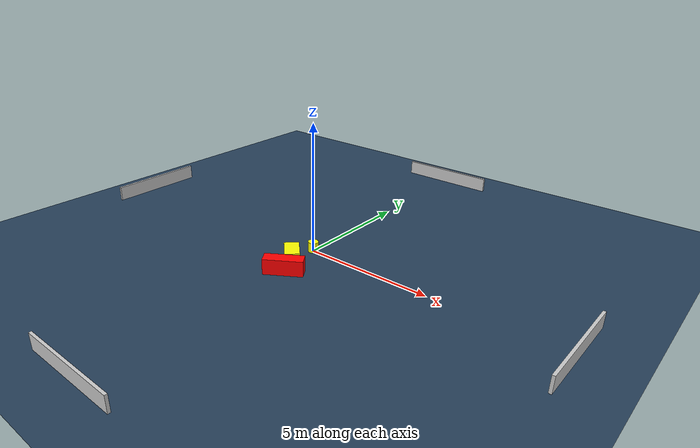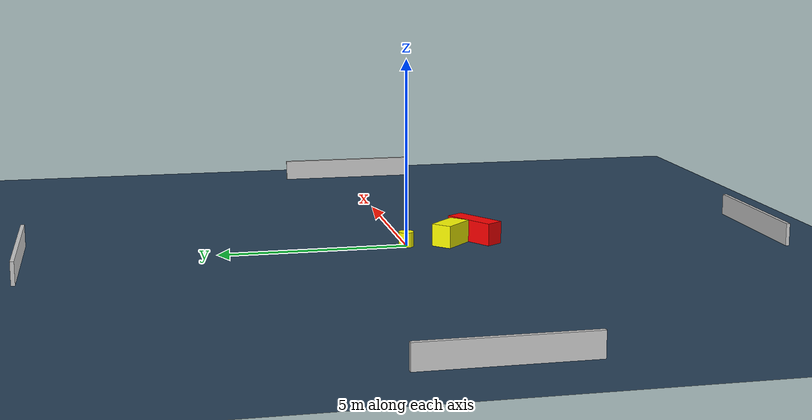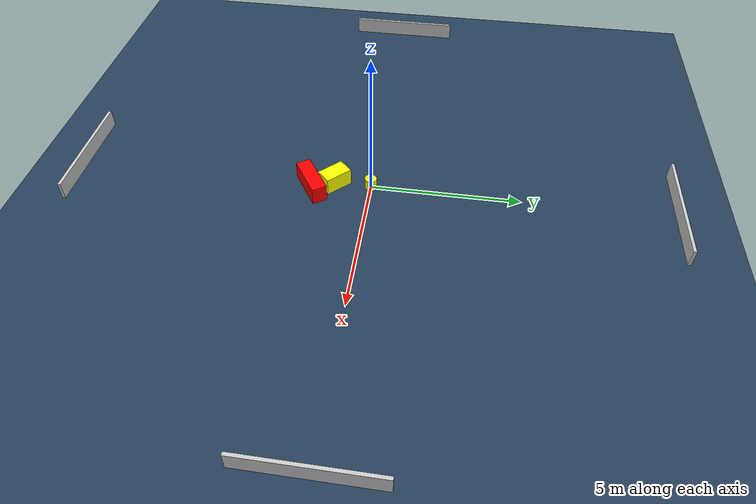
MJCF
<?xml version="1.0" ?>
<mujoco model="generated_environment">
  <option timestep="0.01" integrator="RK4" cone="elliptic"/>
  <default>
    <geom density="1"/>
  </default>
  <asset>
    <texture builtin="gradient" height="3072" name="skybox" rgb1="0.3 0.5 0.7" rgb2="0 0 0" type="skybox" width="512"/>
    <texture builtin="checker" height="300" name="groundplane" rgb1="0.2 0.3 0.4" rgb2="0.1 0.2 0.3" type="2d" width="300"/>
    <material name="groundplane" reflectance="0.2" texrepeat="5 5" texture="groundplane"/>
  </asset>
  <worldbody>
    <light dir="0 0 -1" directional="true" pos="0 0 1.5"/>
    <geom condim="3" friction="0.5 0.005 0.001" material="groundplane" name="floor" pos="0 0 0" size="0 0 0.05" type="plane"/>
    <body name="walls">
      <geom name="wall_1" condim="4" pos="-10.0 0.0 0.3" rgba="0.800000011920929 0.800000011920929 0.800000011920929 1.0" size="0.05 2.0 0.3" type="box"/>
      <geom name="wall_2" condim="4" pos="10.0 0.0 0.3" rgba="0.800000011920929 0.800000011920929 0.800000011920929 1.0" size="0.05 2.0 0.3" type="box"/>
      <geom name="wall_3" condim="4" pos="0.0 -10.0 0.3" rgba="0.800000011920929 0.800000011920929 0.800000011920929 1.0" size="2.0 0.05 0.3" type="box"/>
      <geom name="wall_4" condim="4" pos="0.0 10.0 0.3" rgba="0.800000011920929 0.800000011920929 0.800000011920929 1.0" size="2.0 0.05 0.3" type="box"/>
    </body>
    <body name="robot">
      <joint name="joint_x" type="slide" pos="0 0 0" axis="1 0 0"/>
      <joint name="joint_y" type="slide" pos="0 0 0" axis="0 1 0"/>
      <geom name="robot" type="cylinder" pos="0.0 0.0 0.2" size="0.2 0.2 0.0" mass="5.0" friction="1.0 0.005 0.0001" condim="4" rgba="1.0 1.0 0.0 1.0"/>
    </body>
    <body name="obstacle_1_movable">
      <geom name="obstacle_1_movable" condim="4" pos="0.026784035434299486 -1.2189819682030576 0.3" euler="0 0 134.8073574183967" friction="0.0 0.005 0.001" rgba="1.0 1.0 0.0 1.0" size="0.470638838394513 0.282124386355049 0.3" type="box" mass="0.1"/>
      <joint type="free"/>
    </body>
    <body name="obstacle_2_static">
      <geom name="obstacle_2_static" condim="4" pos="0.3166333618048077 -1.9578303997305426 0.3" euler="0 0 303.0306600188567" friction="0.0 0.005 0.001" rgba="1.0 0.0 0.0 1.0" size="0.2496196790570965 0.7398490313440431 0.3" type="box"/>
    </body>
  </worldbody>
  <actuator>
    <motor name="actuator_x" joint="joint_x" gear="1" ctrlrange="-1 1"/>
    <motor name="actuator_y" joint="joint_y" gear="1" ctrlrange="-1 1"/>
  </actuator>
</mujoco>
